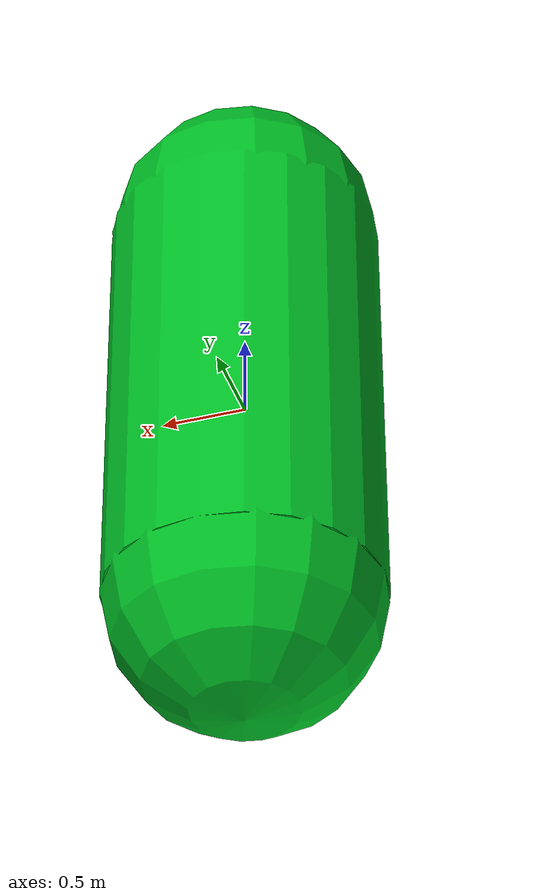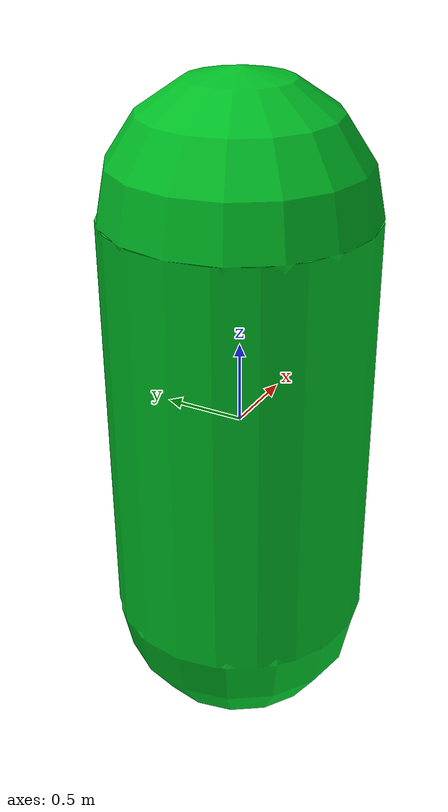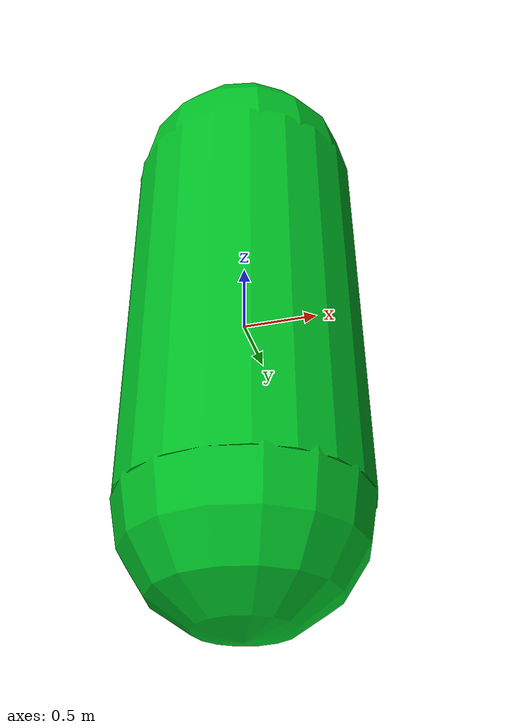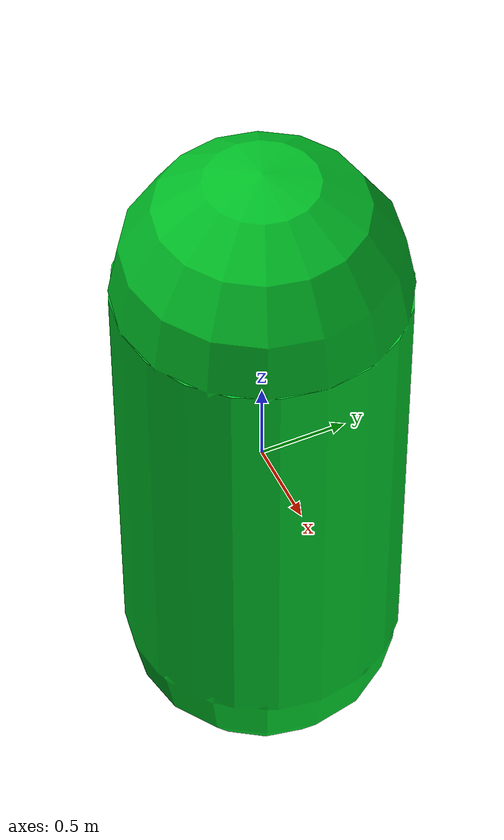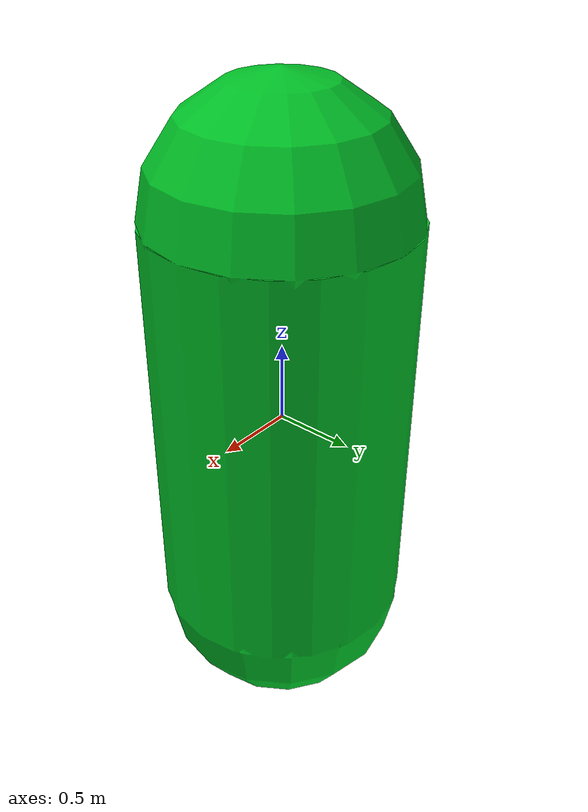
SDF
<?xml version="1.0" ?>
<sdf version="1.7">
  <model name="basic_buoy_green">
    <link name="link">
      <inertial>
        <pose>0 0 -0.5 0 0 0</pose>
        <mass>2500.0</mass>
        <inertia>
          <ixx>1000.0</ixx>
          <iyy>1000.0</iyy>
          <izz>500.0</izz>
        </inertia>
      </inertial>

      <collision name="collision">
        <geometry>
          <capsule>
            <radius>0.8</radius>
            <length>2.6</length>
          </capsule>
        </geometry>
      </collision>

      <visual name="visual">
        <geometry>
          <capsule>
            <radius>0.8</radius>
            <length>2.6</length>
          </capsule>
        </geometry>
        <material>
          <ambient>0.0 0.75 0.15 1.0</ambient>
          <diffuse>0.0 0.75 0.15 1.0</diffuse>
          <specular>0.5 0.5 0.5 1.0</specular>
        </material>
      </visual>
    </link>

    <plugin name="vrx::PolyhedraBuoyancyDrag" filename="libPolyhedraBuoyancyDrag.so">
      <fluid_density>1000</fluid_density>
      <fluid_level>0.0</fluid_level>
      <linear_drag>25.0</linear_drag>
      <angular_drag>2.0</angular_drag>
      <buoyancy name="collision_outer">
        <link_name>link</link_name>
        <pose>0 0 -0.3 0 0 0</pose>
        <geometry>
          <cylinder>
            <radius>0.8</radius>
            <length>2.6</length>
          </cylinder>
        </geometry>
      </buoyancy>
      <wavefield>
        <topic>/vrx/wavefield/parameters</topic>
      </wavefield>
    </plugin>
  </model>
</sdf>
